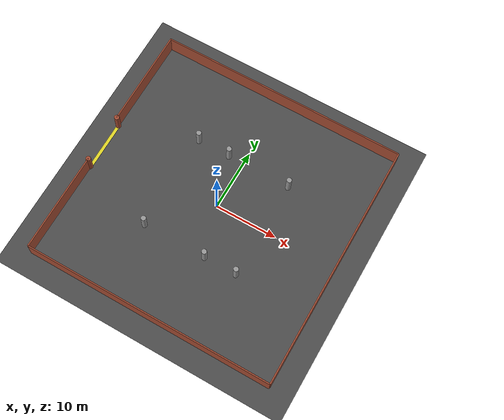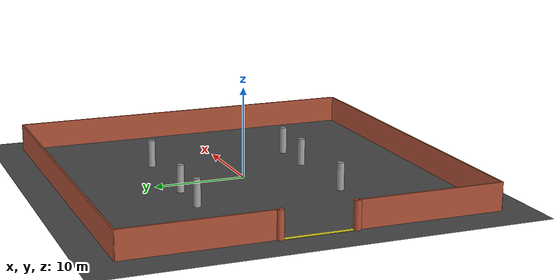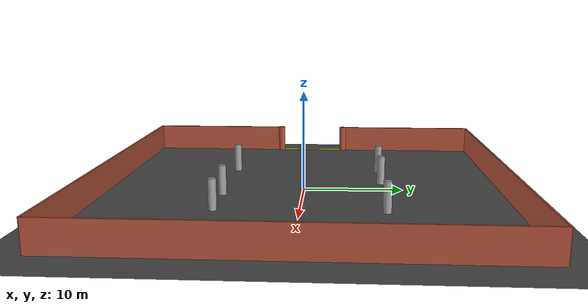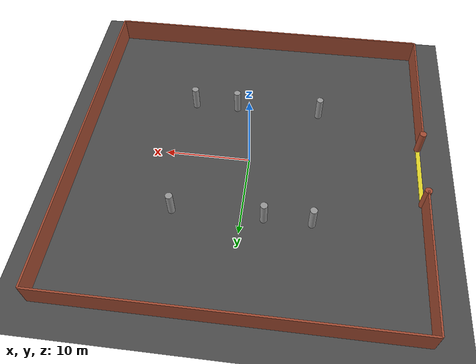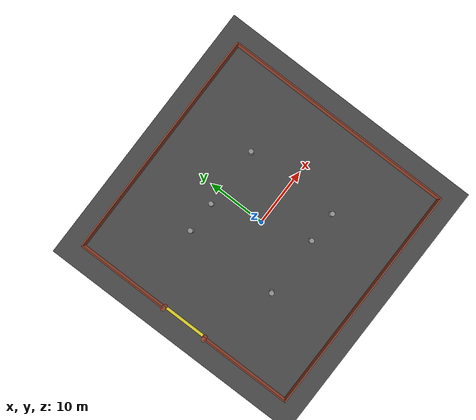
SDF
<sdf version="1.7">
 <world name="default">
  <light name="sun" type="directional">
   <pose>0 0 10 0 -0 0</pose>
   <diffuse>0.8 0.8 0.8 1</diffuse>
   <specular>0.2 0.2 0.2 1</specular>
   <direction>-0.5 0.1 -0.9</direction>
  </light>
  <gravity>0 0 -9.8</gravity>
  <physics type="ode">
   <max_step_size>0.001</max_step_size>
   <real_time_factor>1</real_time_factor>
   <real_time_update_rate>1000</real_time_update_rate>
  </physics>
  <scene><ambient>0.4 0.4 0.4 1</ambient><background>0.7 0.7 0.7 1</background><shadows>0</shadows></scene>
  <model name="custom_asphalt_plane">
   <static>true</static>
   <pose>0 0 -0.05 0 0 0</pose>
   <link name="link">
    <collision name="collision">
     <geometry><plane><normal>0 0 1</normal><size>50 50</size></plane></geometry>
     <surface><friction><ode><mu>0.8</mu><mu2>0.6</mu2></ode></friction></surface>
    </collision>
    <visual name="visual">
     <cast_shadows>false</cast_shadows>
     <geometry><plane><normal>0 0 1</normal><size>50 50</size></plane></geometry>
     <material>
      <script>
       <uri>model://asphalt_plane/materials/scripts</uri>
       <uri>model://asphalt_plane/materials/textures</uri>
       <name>vrc/asphalt</name>
      </script>
      <ambient>0.2 0.2 0.2 1</ambient>
      <diffuse>0.2 0.2 0.2 1</diffuse>
     </material>
    </visual>
   </link>
  </model>
  <model name="concrete_pillars">
   <static>true</static>
   <link name="pillar_a1">
    <pose>-7.8 8 1.5 0 0 0</pose>
    <collision name="c">
     <geometry><cylinder><radius>0.4</radius><length>3.0</length></cylinder></geometry>
    </collision>
    <visual name="v">
     <geometry><cylinder><radius>0.4</radius><length>3.0</length></cylinder></geometry>
     <material>
      <script><uri>file://media/materials/scripts/gazebo.material</uri><name>Gazebo/Grey</name></script>
     </material>
    </visual>
   </link>
   <link name="pillar_a2">
    <pose>-2.5 8 1.5 0 0 0</pose>
    <collision name="c">
     <geometry><cylinder><radius>0.4</radius><length>3.0</length></cylinder></geometry>
    </collision>
    <visual name="v">
     <geometry><cylinder><radius>0.4</radius><length>3.0</length></cylinder></geometry>
     <material>
      <script><uri>file://media/materials/scripts/gazebo.material</uri><name>Gazebo/Grey</name></script>
     </material>
    </visual>
   </link>
   <link name="pillar_a3">
    <pose>7.8 8 1.5 0 0 0</pose>
    <collision name="c">
     <geometry><cylinder><radius>0.4</radius><length>3.0</length></cylinder></geometry>
    </collision>
    <visual name="v">
     <geometry><cylinder><radius>0.4</radius><length>3.0</length></cylinder></geometry>
     <material>
      <script><uri>file://media/materials/scripts/gazebo.material</uri><name>Gazebo/Grey</name></script>
     </material>
    </visual>
   </link>
   <link name="pillar_b1">
    <pose>-7.8 -8 1.5 0 0 0</pose>
    <collision name="c">
     <geometry><cylinder><radius>0.4</radius><length>3.0</length></cylinder></geometry>
    </collision>
    <visual name="v">
     <geometry><cylinder><radius>0.4</radius><length>3.0</length></cylinder></geometry>
     <material>
      <script><uri>file://media/materials/scripts/gazebo.material</uri><name>Gazebo/Grey</name></script>
     </material>
    </visual>
   </link>
   <link name="pillar_b2">
    <pose>2.5 -8 1.5 0 0 0</pose>
    <collision name="c">
     <geometry><cylinder><radius>0.4</radius><length>3.0</length></cylinder></geometry>
    </collision>
    <visual name="v">
     <geometry><cylinder><radius>0.4</radius><length>3.0</length></cylinder></geometry>
     <material>
      <script><uri>file://media/materials/scripts/gazebo.material</uri><name>Gazebo/Grey</name></script>
     </material>
    </visual>
   </link>
   <link name="pillar_b3">
    <pose>7.8 -8 1.5 0 0 0</pose>
    <collision name="c">
     <geometry><cylinder><radius>0.4</radius><length>3.0</length></cylinder></geometry>
    </collision>
    <visual name="v">
     <geometry><cylinder><radius>0.4</radius><length>3.0</length></cylinder></geometry>
     <material>
      <script><uri>file://media/materials/scripts/gazebo.material</uri><name>Gazebo/Grey</name></script>
     </material>
    </visual>
   </link>
  </model>
  <model name="parking_gate">
   <static>true</static>
   <link name="gate_pillar_left">
    <pose>-20 4 1.5 0 0 0</pose>
    <collision name="c">
     <geometry><cylinder><radius>0.4</radius><length>3.0</length></cylinder></geometry>
    </collision>
    <visual name="v">
     <geometry><cylinder><radius>0.4</radius><length>3.0</length></cylinder></geometry>
     <material>
      <script><uri>file://media/materials/scripts/gazebo.material</uri><name>Gazebo/Bricks</name></script>
     </material>
    </visual>
   </link>
   <link name="gate_pillar_right">
    <pose>-20 -4 1.5 0 0 0</pose>
    <collision name="c">
     <geometry><cylinder><radius>0.4</radius><length>3.0</length></cylinder></geometry>
    </collision>
    <visual name="v">
     <geometry><cylinder><radius>0.4</radius><length>3.0</length></cylinder></geometry>
     <material>
      <script><uri>file://media/materials/scripts/gazebo.material</uri><name>Gazebo/Bricks</name></script>
     </material>
    </visual>
   </link>
   <link name="speed_bump_entrance">
    <pose>-20 0 0.025 0 0 0</pose>
    <collision name="c"><geometry><box><size>0.5 8 0.05</size></box></geometry></collision>
    <visual name="v">
     <geometry><box><size>0.5 8 0.05</size></box></geometry>
     <material>
      <script><uri>file://media/materials/scripts/gazebo.material</uri><name>Gazebo/Yellow</name></script>
     </material>
    </visual>
   </link>
  </model>
  <model name="boundary_walls">
   <static>true</static>
   <link name="wall_north">
    <pose>0 20 1.5 0 0 0</pose>
    <collision name="c"><geometry><box><size>40 0.2 3</size></box></geometry></collision>
    <visual name="v">
     <geometry><box><size>40 0.2 3</size></box></geometry>
     <material>
      <script><uri>file://media/materials/scripts/gazebo.material</uri><name>Gazebo/Bricks</name></script>
     </material>
    </visual>
   </link>
   <link name="wall_south">
    <pose>0 -20 1.5 0 0 0</pose>
    <collision name="c"><geometry><box><size>40 0.2 3</size></box></geometry></collision>
    <visual name="v">
     <geometry><box><size>40 0.2 3</size></box></geometry>
     <material>
      <script><uri>file://media/materials/scripts/gazebo.material</uri><name>Gazebo/Bricks</name></script>
     </material>
    </visual>
   </link>
   <link name="wall_west_upper">
    <pose>-20 12 1.5 0 0 1.57</pose>
    <collision name="c"><geometry><box><size>16 0.2 3</size></box></geometry></collision>
    <visual name="v">
     <geometry><box><size>16 0.2 3</size></box></geometry>
     <material>
      <script><uri>file://media/materials/scripts/gazebo.material</uri><name>Gazebo/Bricks</name></script>
     </material>
    </visual>
   </link>
   <link name="wall_west_lower">
    <pose>-20 -12 1.5 0 0 1.57</pose>
    <collision name="c"><geometry><box><size>16 0.2 3</size></box></geometry></collision>
    <visual name="v">
     <geometry><box><size>16 0.2 3</size></box></geometry>
     <material>
      <script><uri>file://media/materials/scripts/gazebo.material</uri><name>Gazebo/Bricks</name></script>
     </material>
    </visual>
   </link>
   <link name="wall_east">
    <pose>20 0 1.5 0 0 1.57</pose>
    <collision name="c"><geometry><box><size>40 0.2 3</size></box></geometry></collision>
    <visual name="v">
     <geometry><box><size>40 0.2 3</size></box></geometry>
     <material>
      <script><uri>file://media/materials/scripts/gazebo.material</uri><name>Gazebo/Bricks</name></script>
     </material>
    </visual>
   </link>
  </model>
 </world>
</sdf>
